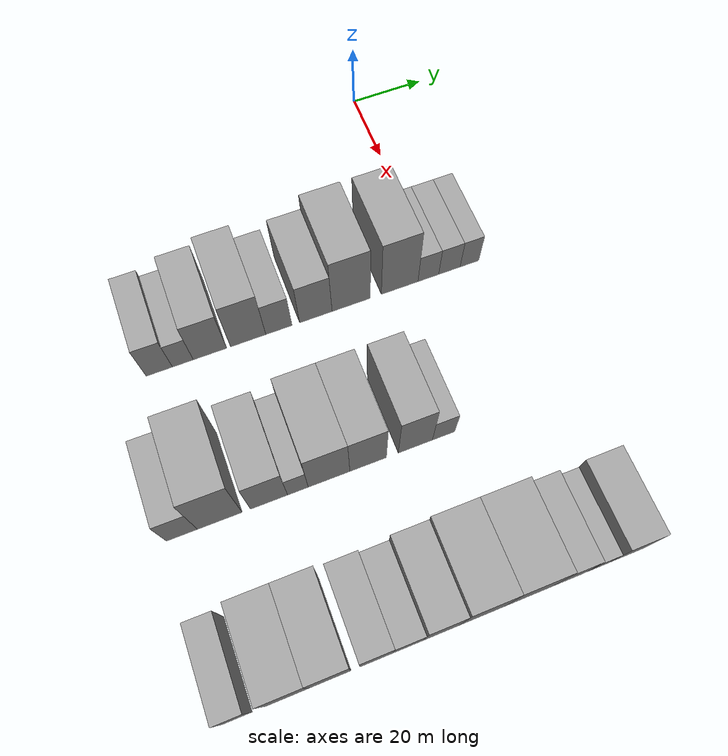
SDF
<sdf version="1.6">
 <world name="default">
  <model name="building_32">
   <static>1</static>
   <pose>50.0000 -73.6490 0 0.000000 0.000000 0.000000</pose>
   <link name="link">
    <pose>0 0 7.50 0 0 0</pose>
    <collision name="collision"><geometry><box><size>20.0000 6.6010 15.0000</size></box></geometry></collision>
    <visual name="visual">
     <cast_shadows>0</cast_shadows>
     <geometry><box><size>20.0000 6.6010 15.0000</size></box></geometry>
     <material>
      <script>
       <uri>model://grey_wall/materials/scripts</uri>
       <uri>model://grey_wall/materials/textures</uri>
       <name>vrc/grey_wall</name>
      </script>
     </material>
    </visual>
   </link>
  </model>
  <model name="building_33">
   <static>1</static>
   <pose>50.0000 -67.7067 0 0.000000 0.000000 0.000000</pose>
   <link name="link">
    <pose>0 0 6.00 0 0 0</pose>
    <collision name="collision"><geometry><box><size>20.0000 5.2834 12.0000</size></box></geometry></collision>
    <visual name="visual">
     <cast_shadows>0</cast_shadows>
     <geometry><box><size>20.0000 5.2834 12.0000</size></box></geometry>
     <material>
      <script>
       <uri>model://grey_wall/materials/scripts</uri>
       <uri>model://grey_wall/materials/textures</uri>
       <name>vrc/grey_wall</name>
      </script>
     </material>
    </visual>
   </link>
  </model>
  <model name="building_34">
   <static>1</static>
   <pose>50.0000 -60.7892 0 0.000000 0.000000 0.000000</pose>
   <link name="link">
    <pose>0 0 9.00 0 0 0</pose>
    <collision name="collision"><geometry><box><size>20.0000 8.5517 18.0000</size></box></geometry></collision>
    <visual name="visual">
     <cast_shadows>0</cast_shadows>
     <geometry><box><size>20.0000 8.5517 18.0000</size></box></geometry>
     <material>
      <script>
       <uri>model://grey_wall/materials/scripts</uri>
       <uri>model://grey_wall/materials/textures</uri>
       <name>vrc/grey_wall</name>
      </script>
     </material>
    </visual>
   </link>
  </model>
  <model name="building_35">
   <static>1</static>
   <pose>50.0000 -50.9330 0 0.000000 0.000000 0.000000</pose>
   <link name="link">
    <pose>0 0 10.50 0 0 0</pose>
    <collision name="collision"><geometry><box><size>20.0000 9.1607 21.0000</size></box></geometry></collision>
    <visual name="visual">
     <cast_shadows>0</cast_shadows>
     <geometry><box><size>20.0000 9.1607 21.0000</size></box></geometry>
     <material>
      <script>
       <uri>model://grey_wall/materials/scripts</uri>
       <uri>model://grey_wall/materials/textures</uri>
       <name>vrc/grey_wall</name>
      </script>
     </material>
    </visual>
   </link>
  </model>
  <model name="building_36">
   <static>1</static>
   <pose>50.0000 -42.9016 0 0.000000 0.000000 0.000000</pose>
   <link name="link">
    <pose>0 0 7.50 0 0 0</pose>
    <collision name="collision"><geometry><box><size>20.0000 6.9022 15.0000</size></box></geometry></collision>
    <visual name="visual">
     <cast_shadows>0</cast_shadows>
     <geometry><box><size>20.0000 6.9022 15.0000</size></box></geometry>
     <material>
      <script>
       <uri>model://grey_wall/materials/scripts</uri>
       <uri>model://grey_wall/materials/textures</uri>
       <name>vrc/grey_wall</name>
      </script>
     </material>
    </visual>
   </link>
  </model>
  <model name="building_37">
   <static>1</static>
   <pose>50.0000 -33.1178 0 0.000000 0.000000 0.000000</pose>
   <link name="link">
    <pose>0 0 9.00 0 0 0</pose>
    <collision name="collision"><geometry><box><size>20.0000 8.6654 18.0000</size></box></geometry></collision>
    <visual name="visual">
     <cast_shadows>0</cast_shadows>
     <geometry><box><size>20.0000 8.6654 18.0000</size></box></geometry>
     <material>
      <script>
       <uri>model://grey_wall/materials/scripts</uri>
       <uri>model://grey_wall/materials/textures</uri>
       <name>vrc/grey_wall</name>
      </script>
     </material>
    </visual>
   </link>
  </model>
  <model name="building_38">
   <static>1</static>
   <pose>50.0000 -23.6172 0 0.000000 0.000000 0.000000</pose>
   <link name="link">
    <pose>0 0 12.00 0 0 0</pose>
    <collision name="collision"><geometry><box><size>20.0000 10.3358 24.0000</size></box></geometry></collision>
    <visual name="visual">
     <cast_shadows>0</cast_shadows>
     <geometry><box><size>20.0000 10.3358 24.0000</size></box></geometry>
     <material>
      <script>
       <uri>model://grey_wall/materials/scripts</uri>
       <uri>model://grey_wall/materials/textures</uri>
       <name>vrc/grey_wall</name>
      </script>
     </material>
    </visual>
   </link>
  </model>
  <model name="building_39">
   <static>1</static>
   <pose>50.0000 -10.4060 0 0.000000 0.000000 0.000000</pose>
   <link name="link">
    <pose>0 0 12.00 0 0 0</pose>
    <collision name="collision"><geometry><box><size>20.0000 10.0866 24.0000</size></box></geometry></collision>
    <visual name="visual">
     <cast_shadows>0</cast_shadows>
     <geometry><box><size>20.0000 10.0866 24.0000</size></box></geometry>
     <material>
      <script>
       <uri>model://grey_wall/materials/scripts</uri>
       <uri>model://grey_wall/materials/textures</uri>
       <name>vrc/grey_wall</name>
      </script>
     </material>
    </visual>
   </link>
  </model>
  <model name="building_40">
   <static>1</static>
   <pose>50.0000 -2.4798 0 0.000000 0.000000 0.000000</pose>
   <link name="link">
    <pose>0 0 6.00 0 0 0</pose>
    <collision name="collision"><geometry><box><size>20.0000 5.7658 12.0000</size></box></geometry></collision>
    <visual name="visual">
     <cast_shadows>0</cast_shadows>
     <geometry><box><size>20.0000 5.7658 12.0000</size></box></geometry>
     <material>
      <script>
       <uri>model://grey_wall/materials/scripts</uri>
       <uri>model://grey_wall/materials/textures</uri>
       <name>vrc/grey_wall</name>
      </script>
     </material>
    </visual>
   </link>
  </model>
  <model name="building_41">
   <static>1</static>
   <pose>50.0000 3.4002 0 0.000000 0.000000 0.000000</pose>
   <link name="link">
    <pose>0 0 6.00 0 0 0</pose>
    <collision name="collision"><geometry><box><size>20.0000 5.9941 12.0000</size></box></geometry></collision>
    <visual name="visual">
     <cast_shadows>0</cast_shadows>
     <geometry><box><size>20.0000 5.9941 12.0000</size></box></geometry>
     <material>
      <script>
       <uri>model://grey_wall/materials/scripts</uri>
       <uri>model://grey_wall/materials/textures</uri>
       <name>vrc/grey_wall</name>
      </script>
     </material>
    </visual>
   </link>
  </model>
  <model name="building_42">
   <static>1</static>
   <pose>50.0000 9.0390 0 0.000000 0.000000 0.000000</pose>
   <link name="link">
    <pose>0 0 6.00 0 0 0</pose>
    <collision name="collision"><geometry><box><size>20.0000 5.2836 12.0000</size></box></geometry></collision>
    <visual name="visual">
     <cast_shadows>0</cast_shadows>
     <geometry><box><size>20.0000 5.2836 12.0000</size></box></geometry>
     <material>
      <script>
       <uri>model://grey_wall/materials/scripts</uri>
       <uri>model://grey_wall/materials/textures</uri>
       <name>vrc/grey_wall</name>
      </script>
     </material>
    </visual>
   </link>
  </model>
  <model name="building_115">
   <static>1</static>
   <pose>90.0000 -79.3301 0 0.000000 0.000000 0.000000</pose>
   <link name="link">
    <pose>0 0 7.50 0 0 0</pose>
    <collision name="collision"><geometry><box><size>20.0000 7.2182 15.0000</size></box></geometry></collision>
    <visual name="visual">
     <cast_shadows>0</cast_shadows>
     <geometry><box><size>20.0000 7.2182 15.0000</size></box></geometry>
     <material>
      <script>
       <uri>model://grey_wall/materials/scripts</uri>
       <uri>model://grey_wall/materials/textures</uri>
       <name>vrc/grey_wall</name>
      </script>
     </material>
    </visual>
   </link>
  </model>
  <model name="building_116">
   <static>1</static>
   <pose>90.0000 -70.4651 0 0.000000 0.000000 0.000000</pose>
   <link name="link">
    <pose>0 0 12.00 0 0 0</pose>
    <collision name="collision"><geometry><box><size>20.0000 10.5117 24.0000</size></box></geometry></collision>
    <visual name="visual">
     <cast_shadows>0</cast_shadows>
     <geometry><box><size>20.0000 10.5117 24.0000</size></box></geometry>
     <material>
      <script>
       <uri>model://grey_wall/materials/scripts</uri>
       <uri>model://grey_wall/materials/textures</uri>
       <name>vrc/grey_wall</name>
      </script>
     </material>
    </visual>
   </link>
  </model>
  <model name="building_117">
   <static>1</static>
   <pose>90.0000 -58.7573 0 0.000000 0.000000 0.000000</pose>
   <link name="link">
    <pose>0 0 9.00 0 0 0</pose>
    <collision name="collision"><geometry><box><size>20.0000 8.9038 18.0000</size></box></geometry></collision>
    <visual name="visual">
     <cast_shadows>0</cast_shadows>
     <geometry><box><size>20.0000 8.9038 18.0000</size></box></geometry>
     <material>
      <script>
       <uri>model://grey_wall/materials/scripts</uri>
       <uri>model://grey_wall/materials/textures</uri>
       <name>vrc/grey_wall</name>
      </script>
     </material>
    </visual>
   </link>
  </model>
  <model name="building_118">
   <static>1</static>
   <pose>90.0000 -51.8091 0 0.000000 0.000000 0.000000</pose>
   <link name="link">
    <pose>0 0 6.00 0 0 0</pose>
    <collision name="collision"><geometry><box><size>20.0000 4.9926 12.0000</size></box></geometry></collision>
    <visual name="visual">
     <cast_shadows>0</cast_shadows>
     <geometry><box><size>20.0000 4.9926 12.0000</size></box></geometry>
     <material>
      <script>
       <uri>model://grey_wall/materials/scripts</uri>
       <uri>model://grey_wall/materials/textures</uri>
       <name>vrc/grey_wall</name>
      </script>
     </material>
    </visual>
   </link>
  </model>
  <model name="building_119">
   <static>1</static>
   <pose>90.0000 -44.2139 0 0.000000 0.000000 0.000000</pose>
   <link name="link">
    <pose>0 0 10.50 0 0 0</pose>
    <collision name="collision"><geometry><box><size>20.0000 10.1979 21.0000</size></box></geometry></collision>
    <visual name="visual">
     <cast_shadows>0</cast_shadows>
     <geometry><box><size>20.0000 10.1979 21.0000</size></box></geometry>
     <material>
      <script>
       <uri>model://grey_wall/materials/scripts</uri>
       <uri>model://grey_wall/materials/textures</uri>
       <name>vrc/grey_wall</name>
      </script>
     </material>
    </visual>
   </link>
  </model>
  <model name="building_120">
   <static>1</static>
   <pose>90.0000 -34.5667 0 0.000000 0.000000 0.000000</pose>
   <link name="link">
    <pose>0 0 10.50 0 0 0</pose>
    <collision name="collision"><geometry><box><size>20.0000 9.0967 21.0000</size></box></geometry></collision>
    <visual name="visual">
     <cast_shadows>0</cast_shadows>
     <geometry><box><size>20.0000 9.0967 21.0000</size></box></geometry>
     <material>
      <script>
       <uri>model://grey_wall/materials/scripts</uri>
       <uri>model://grey_wall/materials/textures</uri>
       <name>vrc/grey_wall</name>
      </script>
     </material>
    </visual>
   </link>
  </model>
  <model name="building_121">
   <static>1</static>
   <pose>90.0000 -22.6970 0 0.000000 0.000000 0.000000</pose>
   <link name="link">
    <pose>0 0 10.50 0 0 0</pose>
    <collision name="collision"><geometry><box><size>20.0000 8.6427 21.0000</size></box></geometry></collision>
    <visual name="visual">
     <cast_shadows>0</cast_shadows>
     <geometry><box><size>20.0000 8.6427 21.0000</size></box></geometry>
     <material>
      <script>
       <uri>model://grey_wall/materials/scripts</uri>
       <uri>model://grey_wall/materials/textures</uri>
       <name>vrc/grey_wall</name>
      </script>
     </material>
    </visual>
   </link>
  </model>
  <model name="building_122">
   <static>1</static>
   <pose>90.0000 -15.5007 0 0.000000 0.000000 0.000000</pose>
   <link name="link">
    <pose>0 0 6.00 0 0 0</pose>
    <collision name="collision"><geometry><box><size>20.0000 5.7499 12.0000</size></box></geometry></collision>
    <visual name="visual">
     <cast_shadows>0</cast_shadows>
     <geometry><box><size>20.0000 5.7499 12.0000</size></box></geometry>
     <material>
      <script>
       <uri>model://grey_wall/materials/scripts</uri>
       <uri>model://grey_wall/materials/textures</uri>
       <name>vrc/grey_wall</name>
      </script>
     </material>
    </visual>
   </link>
  </model>
  <model name="building_188">
   <static>1</static>
   <pose>130.0000 -78.9342 0 0.000000 0.000000 0.000000</pose>
   <link name="link">
    <pose>0 0 7.50 0 0 0</pose>
    <collision name="collision"><geometry><box><size>20.0000 6.3974 15.0000</size></box></geometry></collision>
    <visual name="visual">
     <cast_shadows>0</cast_shadows>
     <geometry><box><size>20.0000 6.3974 15.0000</size></box></geometry>
     <material>
      <script>
       <uri>model://grey_wall/materials/scripts</uri>
       <uri>model://grey_wall/materials/textures</uri>
       <name>vrc/grey_wall</name>
      </script>
     </material>
    </visual>
   </link>
  </model>
  <model name="building_189">
   <static>1</static>
   <pose>130.0000 -67.8846 0 0.000000 0.000000 0.000000</pose>
   <link name="link">
    <pose>0 0 10.50 0 0 0</pose>
    <collision name="collision"><geometry><box><size>20.0000 9.7017 21.0000</size></box></geometry></collision>
    <visual name="visual">
     <cast_shadows>0</cast_shadows>
     <geometry><box><size>20.0000 9.7017 21.0000</size></box></geometry>
     <material>
      <script>
       <uri>model://grey_wall/materials/scripts</uri>
       <uri>model://grey_wall/materials/textures</uri>
       <name>vrc/grey_wall</name>
      </script>
     </material>
    </visual>
   </link>
  </model>
  <model name="building_190">
   <static>1</static>
   <pose>130.0000 -58.4833 0 0.000000 0.000000 0.000000</pose>
   <link name="link">
    <pose>0 0 10.50 0 0 0</pose>
    <collision name="collision"><geometry><box><size>20.0000 9.1009 21.0000</size></box></geometry></collision>
    <visual name="visual">
     <cast_shadows>0</cast_shadows>
     <geometry><box><size>20.0000 9.1009 21.0000</size></box></geometry>
     <material>
      <script>
       <uri>model://grey_wall/materials/scripts</uri>
       <uri>model://grey_wall/materials/textures</uri>
       <name>vrc/grey_wall</name>
      </script>
     </material>
    </visual>
   </link>
  </model>
  <model name="building_191">
   <static>1</static>
   <pose>130.0000 -48.2224 0 0.000000 0.000000 0.000000</pose>
   <link name="link">
    <pose>0 0 9.00 0 0 0</pose>
    <collision name="collision"><geometry><box><size>20.0000 7.4208 18.0000</size></box></geometry></collision>
    <visual name="visual">
     <cast_shadows>0</cast_shadows>
     <geometry><box><size>20.0000 7.4208 18.0000</size></box></geometry>
     <material>
      <script>
       <uri>model://grey_wall/materials/scripts</uri>
       <uri>model://grey_wall/materials/textures</uri>
       <name>vrc/grey_wall</name>
      </script>
     </material>
    </visual>
   </link>
  </model>
  <model name="building_192">
   <static>1</static>
   <pose>130.0000 -41.0879 0 0.000000 0.000000 0.000000</pose>
   <link name="link">
    <pose>0 0 7.50 0 0 0</pose>
    <collision name="collision"><geometry><box><size>20.0000 6.8482 15.0000</size></box></geometry></collision>
    <visual name="visual">
     <cast_shadows>0</cast_shadows>
     <geometry><box><size>20.0000 6.8482 15.0000</size></box></geometry>
     <material>
      <script>
       <uri>model://grey_wall/materials/scripts</uri>
       <uri>model://grey_wall/materials/textures</uri>
       <name>vrc/grey_wall</name>
      </script>
     </material>
    </visual>
   </link>
  </model>
  <model name="building_193">
   <static>1</static>
   <pose>130.0000 -33.4080 0 0.000000 0.000000 0.000000</pose>
   <link name="link">
    <pose>0 0 10.50 0 0 0</pose>
    <collision name="collision"><geometry><box><size>20.0000 8.5117 21.0000</size></box></geometry></collision>
    <visual name="visual">
     <cast_shadows>0</cast_shadows>
     <geometry><box><size>20.0000 8.5117 21.0000</size></box></geometry>
     <material>
      <script>
       <uri>model://grey_wall/materials/scripts</uri>
       <uri>model://grey_wall/materials/textures</uri>
       <name>vrc/grey_wall</name>
      </script>
     </material>
    </visual>
   </link>
  </model>
  <model name="building_194">
   <static>1</static>
   <pose>130.0000 -23.8116 0 0.000000 0.000000 0.000000</pose>
   <link name="link">
    <pose>0 0 12.00 0 0 0</pose>
    <collision name="collision"><geometry><box><size>20.0000 10.6812 24.0000</size></box></geometry></collision>
    <visual name="visual">
     <cast_shadows>0</cast_shadows>
     <geometry><box><size>20.0000 10.6812 24.0000</size></box></geometry>
     <material>
      <script>
       <uri>model://grey_wall/materials/scripts</uri>
       <uri>model://grey_wall/materials/textures</uri>
       <name>vrc/grey_wall</name>
      </script>
     </material>
    </visual>
   </link>
  </model>
  <model name="building_195">
   <static>1</static>
   <pose>130.0000 -12.8145 0 0.000000 0.000000 0.000000</pose>
   <link name="link">
    <pose>0 0 12.00 0 0 0</pose>
    <collision name="collision"><geometry><box><size>20.0000 11.3129 24.0000</size></box></geometry></collision>
    <visual name="visual">
     <cast_shadows>0</cast_shadows>
     <geometry><box><size>20.0000 11.3129 24.0000</size></box></geometry>
     <material>
      <script>
       <uri>model://grey_wall/materials/scripts</uri>
       <uri>model://grey_wall/materials/textures</uri>
       <name>vrc/grey_wall</name>
      </script>
     </material>
    </visual>
   </link>
  </model>
  <model name="building_196">
   <static>1</static>
   <pose>130.0000 -3.2548 0 0.000000 0.000000 0.000000</pose>
   <link name="link">
    <pose>0 0 9.00 0 0 0</pose>
    <collision name="collision"><geometry><box><size>20.0000 7.8064 18.0000</size></box></geometry></collision>
    <visual name="visual">
     <cast_shadows>0</cast_shadows>
     <geometry><box><size>20.0000 7.8064 18.0000</size></box></geometry>
     <material>
      <script>
       <uri>model://grey_wall/materials/scripts</uri>
       <uri>model://grey_wall/materials/textures</uri>
       <name>vrc/grey_wall</name>
      </script>
     </material>
    </visual>
   </link>
  </model>
  <model name="building_197">
   <static>1</static>
   <pose>130.0000 4.1837 0 0.000000 0.000000 0.000000</pose>
   <link name="link">
    <pose>0 0 6.00 0 0 0</pose>
    <collision name="collision"><geometry><box><size>20.0000 5.0707 12.0000</size></box></geometry></collision>
    <visual name="visual">
     <cast_shadows>0</cast_shadows>
     <geometry><box><size>20.0000 5.0707 12.0000</size></box></geometry>
     <material>
      <script>
       <uri>model://grey_wall/materials/scripts</uri>
       <uri>model://grey_wall/materials/textures</uri>
       <name>vrc/grey_wall</name>
      </script>
     </material>
    </visual>
   </link>
  </model>
  <model name="building_198">
   <static>1</static>
   <pose>130.0000 11.1333 0 0.000000 0.000000 0.000000</pose>
   <link name="link">
    <pose>0 0 9.00 0 0 0</pose>
    <collision name="collision"><geometry><box><size>20.0000 8.8284 18.0000</size></box></geometry></collision>
    <visual name="visual">
     <cast_shadows>0</cast_shadows>
     <geometry><box><size>20.0000 8.8284 18.0000</size></box></geometry>
     <material>
      <script>
       <uri>model://grey_wall/materials/scripts</uri>
       <uri>model://grey_wall/materials/textures</uri>
       <name>vrc/grey_wall</name>
      </script>
     </material>
    </visual>
   </link>
  </model>
 </world>
</sdf>
